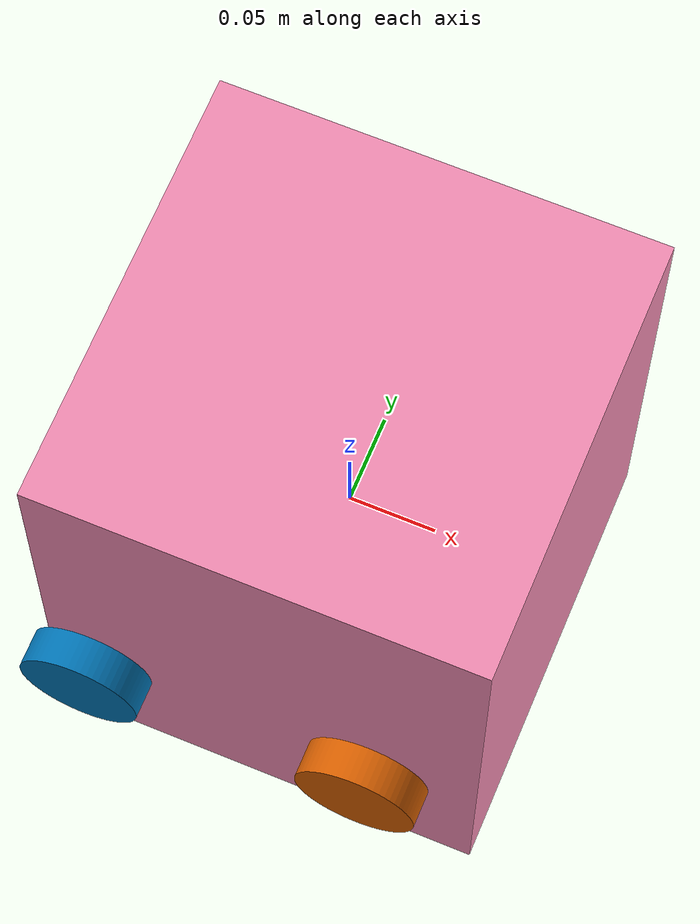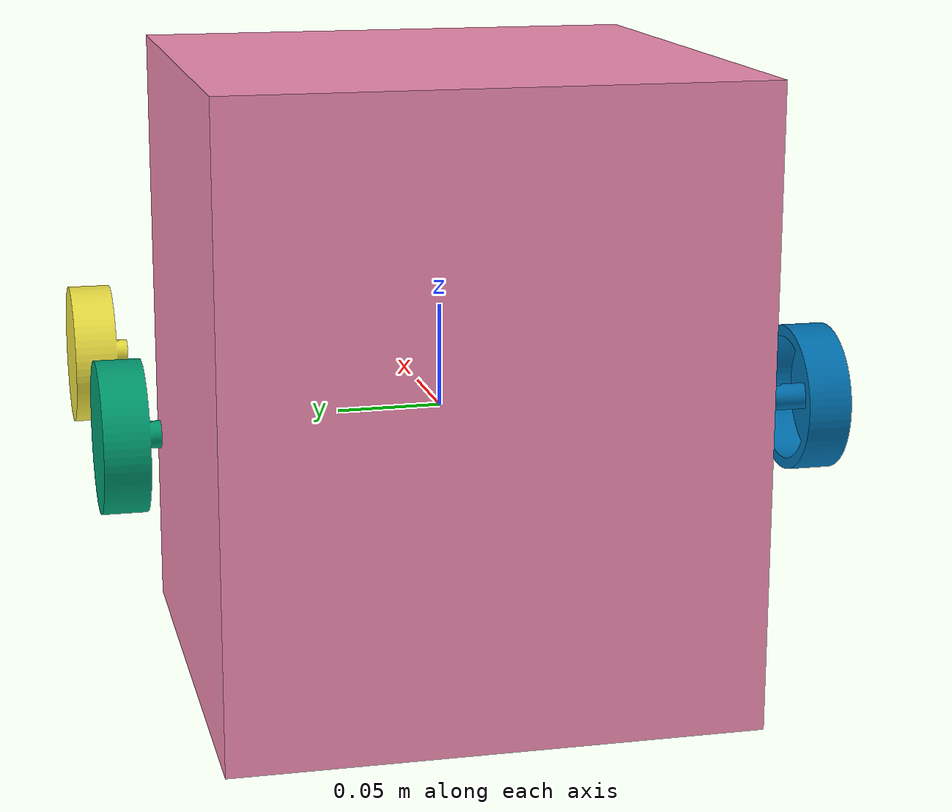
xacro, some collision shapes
<?xml version="1.0"?>
<robot xmlns:xacro="http://www.ros.org/wiki/xacro">

    <xacro:property name="base_length" value="0.25" />
    <xacro:property name="base_width" value="0.25" />
    <xacro:property name="base_wheel_x" value="-0.087" />
    <xacro:property name="base_wheel_x_front" value="0.07" />
    <xacro:property name="base_wheel_y" value="0.15" />
    <xacro:property name="base_wheel_z" value="-0.002" />
    <xacro:property name="base_height" value="0.3" />
    <xacro:property name="wheel_radius" value="0.05" />
    <xacro:property name="wheel_length" value="0.03" />

    <link name="base_footprint" />

    <link name="base_link">
        <visual>
            <geometry>
                <mesh filename="package://kpbot_description/models/meshes/composite_part_1.stl"/>

            </geometry>
            <origin xyz="0.1 0.05 -0.1" rpy="1.57 0 -1.57" />
            <material name="pink" />
        </visual>
        <collision>
            <geometry>
                <box size="${base_length} ${base_width} ${base_height}" />
            </geometry>
            <origin xyz="0 0 0" rpy="0 0 0" />
        </collision>
        <xacro:box_inertia m="5.0" l="${2*base_length}" w="${base_width}" h="${base_height}"
                           xyz="0 0 ${base_height / 2.0}" rpy="0 0 0" />
    </link>

    <xacro:macro name="wheel_link" params="prefix">

    </xacro:macro>

    <xacro:wheel_link prefix="back_right" />

    <link name="back_right_wheel_link">
        <visual>
            <geometry>
                <mesh filename="package://kpbot_description/models/meshes/wheel.stl"/>
            </geometry>
                <origin xyz="0 0 0" rpy="0 0 -1.57" />

            <material name="violet" />
        </visual>
        <collision>
            <geometry>
                <cylinder radius="${wheel_radius}" length="${wheel_length}" />
            </geometry>
            <origin xyz="${base_wheel_x} ${base_wheel_y} ${base_wheel_z}" rpy="-1.57 0 1.57" />
        </collision>
        <xacro:cylinder_inertia m="2.0" r="${wheel_radius}" h="${wheel_length}"
                                xyz="0 0 0" rpy="0 0 1.57" />
    </link>

    <link name="front_right_wheel_link">
        <visual>
            <geometry>
                <mesh filename="package://kpbot_description/models/meshes/wheel.stl"/>
            </geometry>
                <origin xyz="0 0 0" rpy="0 0 -1.57" />

            <material name="violet" />
        </visual>
        <collision>
            <geometry>
                <cylinder radius="${wheel_radius}" length="${wheel_length}" />
            </geometry>
            <origin xyz="${base_wheel_x_front} ${base_wheel_y} ${base_wheel_z}" rpy="-1.57 0 1.57" />
        </collision>
        <xacro:cylinder_inertia m="2.0" r="${wheel_radius}" h="${wheel_length}"
                                xyz="0 0 0" rpy="0 0 1.57" />
    </link>

    <link name="back_left_wheel_link">
        <visual>
            <geometry>
                <mesh filename="package://kpbot_description/models/meshes/wheel.stl"/>
            </geometry>
                <origin xyz="0 0 0" rpy="0 0 1.57" />

            <material name="violet" />
        </visual>
        <collision>
            <geometry>
                <cylinder radius="${wheel_radius}" length="${wheel_length}" />
            </geometry>
            <origin xyz="${base_wheel_x} ${0.009-base_wheel_y} ${base_wheel_z}" rpy="1.57 0 1.57" />
        </collision>
        <xacro:cylinder_inertia m="2.0" r="${wheel_radius}" h="${wheel_length}"
                                xyz="0 0 0" rpy="0 0 1.57" />
    </link>

    <link name="front_left_wheel_link">
        <visual>
            <geometry>
                <mesh filename="package://kpbot_description/models/meshes/wheel.stl"/>
            </geometry>
                <origin xyz="0 0 0" rpy="0 0 1.57" />

            <material name="violet" />
        </visual>
        <collision>
            <geometry>
                <cylinder radius="${wheel_radius}" length="${wheel_length}" />
            </geometry>
            <origin xyz="${base_wheel_x_front} ${0.009-base_wheel_y} ${base_wheel_z}" rpy="1.57 0 1.57" />
        </collision>
        <xacro:cylinder_inertia m="2.0" r="${wheel_radius}" h="${wheel_length}"
                                xyz="0 0 0" rpy="0 0 1.57" />
    </link>

    <joint name="base_joint" type="fixed">
        <parent link="base_footprint" />
        <child link="base_link" />
        <origin xyz="0 0 0.02" rpy="0 0 0"/>
    </joint>

    <joint name="back_right_joint" type="continuous">
        <parent link="base_link" />
        <child link="back_right_wheel_link" />
        <origin xyz="${base_wheel_x} ${base_wheel_y} ${base_wheel_z}" rpy="0.0 0 0" />
        <axis xyz="0 1 0" />
    </joint>

    <joint name="front_right_joint" type="continuous">
        <parent link="base_link" />
        <child link="front_right_wheel_link" />
        <origin xyz="${base_wheel_x_front} ${base_wheel_y} ${base_wheel_z}" rpy="0.0 0 0" />
        <axis xyz="0 1 0" />
    </joint>

    <joint name="back_left_joint" type="continuous">
        <parent link="base_link" />
        <child link="back_left_wheel_link" />
        <origin xyz="${base_wheel_x} ${0.009-base_wheel_y} ${base_wheel_z}" rpy="0 0 0" />
        <axis xyz="0 1 0" />
    </joint>

    <joint name="front_left_joint" type="continuous">
        <parent link="base_link" />
        <child link="front_left_wheel_link" />
        <origin xyz="${base_wheel_x_front} ${0.009-base_wheel_y} ${base_wheel_z}" rpy="0 0 0.0" />
        <axis xyz="0 1 0" />
    </joint>

</robot>
